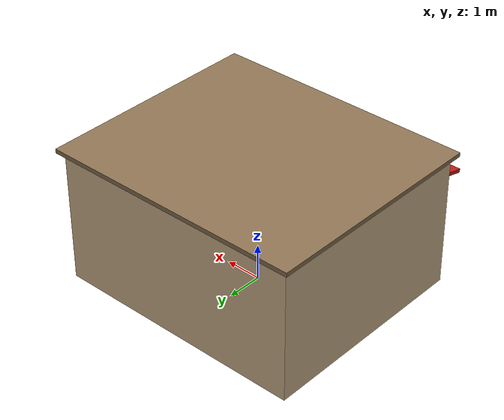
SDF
<?xml version="1.0" ?>
<!-- Restaurant: 7x6m commercial, warm beige walls, red awning. Front faces -Y (Y=-3.0) -->
<sdf version="1.6">
  <model name="restaurant">
    <static>true</static>
    <link name="link">

      <collision name="col">
        <pose>0 0 2.0 0 0 0</pose>
        <geometry><box><size>7 6 4.0</size></box></geometry>
      </collision>

      <visual name="walls">
        <pose>0 0 1.85 0 0 0</pose>
        <geometry><box><size>7 6 3.7</size></box></geometry>
        <material>
          <ambient>0.85 0.74 0.58 1</ambient>
          <diffuse>0.85 0.74 0.58 1</diffuse>
          <specular>0.05 0.05 0.05 1</specular>
        </material>
      </visual>

      <!-- Flat roof with slight overhang -->
      <visual name="roof">
        <pose>0 0 3.76 0 0 0</pose>
        <geometry><box><size>7.3 6.3 0.12</size></box></geometry>
        <material><ambient>0.55 0.45 0.32 1</ambient><diffuse>0.55 0.45 0.32 1</diffuse></material>
      </visual>

      <!-- Red awning (front at Y=-3.0) -->
      <visual name="awning">
        <pose>0 -3.4 2.9 0.25 0 0</pose>
        <geometry><box><size>6.5 0.9 0.1</size></box></geometry>
        <material><ambient>0.78 0.12 0.10 1</ambient><diffuse>0.78 0.12 0.10 1</diffuse></material>
      </visual>
      <visual name="awning_bar">
        <pose>0 -3.35 2.75 0 0 0</pose>
        <geometry><box><size>6.5 0.06 0.06</size></box></geometry>
        <material><ambient>0.5 0.5 0.5 1</ambient><diffuse>0.5 0.5 0.5 1</diffuse></material>
      </visual>

      <!-- Large front windows -->
      <visual name="win_front_left">
        <pose>-2.0 -3.06 2.0 0 0 0</pose>
        <geometry><box><size>1.8 0.1 2.0</size></box></geometry>
        <material>
          <ambient>0.75 0.88 1.0 1</ambient><diffuse>0.75 0.88 1.0 1</diffuse>
          <specular>0.6 0.6 0.6 1</specular>
        </material>
      </visual>
      <visual name="win_front_right">
        <pose>2.0 -3.06 2.0 0 0 0</pose>
        <geometry><box><size>1.8 0.1 2.0</size></box></geometry>
        <material>
          <ambient>0.75 0.88 1.0 1</ambient><diffuse>0.75 0.88 1.0 1</diffuse>
          <specular>0.6 0.6 0.6 1</specular>
        </material>
      </visual>

      <visual name="door">
        <pose>0 -3.06 0.95 0 0 0</pose>
        <geometry><box><size>1.0 0.12 2.0</size></box></geometry>
        <material><ambient>0.60 0.38 0.18 1</ambient><diffuse>0.60 0.38 0.18 1</diffuse></material>
      </visual>

      <visual name="win_side">
        <pose>3.56 0 2.2 0 0 0</pose>
        <geometry><box><size>0.1 1.4 1.1</size></box></geometry>
        <material>
          <ambient>0.75 0.88 1.0 1</ambient><diffuse>0.75 0.88 1.0 1</diffuse>
          <specular>0.6 0.6 0.6 1</specular>
        </material>
      </visual>

      <visual name="qr_code">
        <pose>-2.8 -3.035 2.0 0 0 0</pose>
        <geometry><box><size>0.5 0.05 0.5</size></box></geometry>
        <material><ambient>1 1 1 1</ambient><diffuse>1 1 1 1</diffuse></material>
      </visual>

    </link>
  </model>
</sdf>
